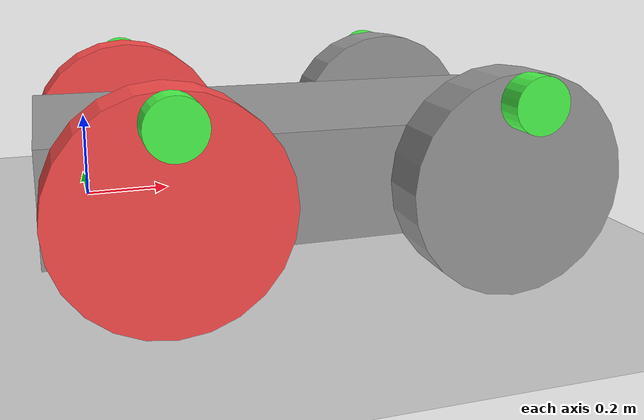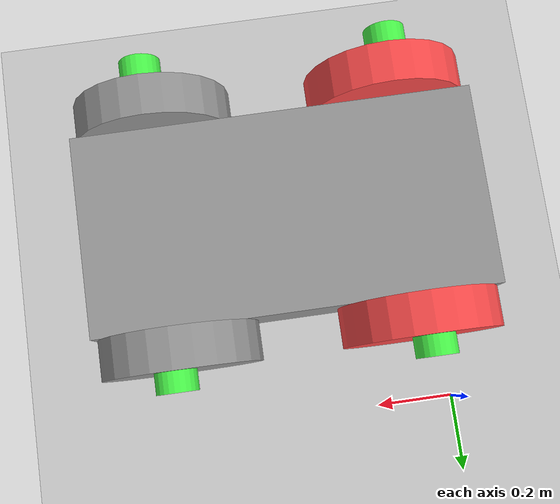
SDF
<sdf version="1.7">
 <world name="default">
  <light name="sun" type="directional">
   <pose>0 0 10 0 -0 0</pose>
   <diffuse>0.8 0.8 0.8 1</diffuse>
   <specular>0.2 0.2 0.2 1</specular>
   <attenuation>
    <range>1000</range>
    <constant>0.9</constant>
    <linear>0.01</linear>
    <quadratic>0.001</quadratic>
   </attenuation>
   <direction>-0.5 0.1 -0.9</direction>
   <spot><inner_angle>0</inner_angle><outer_angle>0</outer_angle><falloff>0</falloff></spot>
  </light>
  <model name="ground_plane">
   <static>1</static>
   <link name="link">
    <collision name="collision">
     <geometry><plane><normal>0 0 1</normal><size>100 100</size></plane></geometry>
     <surface>
      <contact><collide_bitmask>65535</collide_bitmask></contact>
      <friction><ode><mu>100</mu><mu2>50</mu2></ode></friction>
     </surface>
    </collision>
    <visual name="visual">
     <cast_shadows>0</cast_shadows>
     <geometry><plane><normal>0 0 1</normal><size>100 100</size></plane></geometry>
     <material>
      <script><uri>file://media/materials/scripts/gazebo.material</uri><name>Gazebo/Grey</name></script>
     </material>
    </visual>
   </link>
  </model>
  <gravity>0 0 -9.8</gravity>
  <magnetic_field>6e-06 2.3e-05 -4.2e-05</magnetic_field>
  <atmosphere type="adiabatic"/>
  <physics type="ode">
   <max_step_size>0.001</max_step_size>
   <real_time_factor>1</real_time_factor>
   <real_time_update_rate>1000</real_time_update_rate>
  </physics>
  <scene><ambient>0.4 0.4 0.4 1</ambient><background>0.7 0.7 0.7 1</background><shadows>1</shadows></scene>
  <spherical_coordinates>
   <surface_model>EARTH_WGS84</surface_model>
   <latitude_deg>0</latitude_deg>
   <longitude_deg>0</longitude_deg>
   <elevation>0</elevation>
   <heading_deg>0</heading_deg>
  </spherical_coordinates>
  <model name="car">
   <link name="body">
    <inertial>
     <mass>1</mass>
     <inertia>
      <ixx>0.166667</ixx>
      <ixy>0</ixy>
      <ixz>0</ixz>
      <iyy>0.166667</iyy>
      <iyz>0</iyz>
      <izz>0.166667</izz>
     </inertia>
    </inertial>
    <pose>-0.324573 -0.290339 0.5 0 -0 0</pose>
    <visual name="visual">
     <geometry><box><size>1 0.5 0.2</size></box></geometry>
     <material>
      <lighting>1</lighting>
      <script><uri>file://media/materials/scripts/gazebo.material</uri><name>Gazebo/Grey</name></script>
      <shader type="pixel"><normal_map>__default__</normal_map></shader>
      <ambient>0.3 0.3 0.3 1</ambient>
      <diffuse>0.7 0.7 0.7 1</diffuse>
      <specular>0.01 0.01 0.01 1</specular>
      <emissive>0 0 0 1</emissive>
     </material>
    </visual>
    <collision name="collision">
     <geometry><box><size>1 0.5 0.2</size></box></geometry>
     <surface>
      <friction>
       <ode><mu>1</mu><mu2>1</mu2><fdir1>0 0 0</fdir1><slip1>0</slip1><slip2>0</slip2></ode>
       <torsional>
        <coefficient>1</coefficient>
        <patch_radius>0</patch_radius>
        <surface_radius>0</surface_radius>
        <use_patch_radius>1</use_patch_radius>
        <ode><slip>0</slip></ode>
       </torsional>
      </friction>
      <bounce><restitution_coefficient>0</restitution_coefficient><threshold>1e+06</threshold></bounce>
      <contact>
       <collide_without_contact>0</collide_without_contact>
       <collide_without_contact_bitmask>1</collide_without_contact_bitmask>
       <collide_bitmask>1</collide_bitmask>
       <ode>
        <soft_cfm>0</soft_cfm>
        <soft_erp>0.2</soft_erp>
        <kp>1e+13</kp>
        <kd>1</kd>
        <max_vel>0.01</max_vel>
        <min_depth>0</min_depth>
       </ode>
       <bullet>
        <split_impulse>1</split_impulse>
        <split_impulse_penetration_threshold>-0.01</split_impulse_penetration_threshold>
        <soft_cfm>0</soft_cfm>
        <soft_erp>0.2</soft_erp>
        <kp>1e+13</kp>
        <kd>1</kd>
       </bullet>
      </contact>
     </surface>
    </collision>
   </link>
   <link name="back_left_wheel">
    <inertial>
     <mass>1</mass>
     <inertia><ixx>0.145833</ixx><ixy>0</ixy><ixz>0</ixz><iyy>0.145833</iyy><iyz>0</iyz><izz>0.125</izz></inertia>
    </inertial>
    <pose>-0.024573 -0.59034 0.5 1.5708 -0 0</pose>
    <visual name="visual">
     <geometry><cylinder><radius>0.2</radius><length>0.1</length></cylinder></geometry>
     <material>
      <lighting>1</lighting>
      <script><uri>file://media/materials/scripts/gazebo.material</uri><name>Gazebo/Grey</name></script>
      <shader type="pixel"><normal_map>__default__</normal_map></shader>
      <ambient>0.3 0.3 0.3 1</ambient>
      <diffuse>0.7 0.7 0.7 1</diffuse>
      <specular>0.01 0.01 0.01 1</specular>
      <emissive>0 0 0 1</emissive>
     </material>
    </visual>
    <collision name="collision">
     <geometry><cylinder><radius>0.2</radius><length>0.1</length></cylinder></geometry>
     <surface>
      <friction>
       <ode><mu>1</mu><mu2>1</mu2><fdir1>0 0 0</fdir1><slip1>0.5</slip1><slip2>0</slip2></ode>
       <torsional>
        <coefficient>1</coefficient>
        <patch_radius>0</patch_radius>
        <surface_radius>0</surface_radius>
        <use_patch_radius>1</use_patch_radius>
        <ode><slip>0</slip></ode>
       </torsional>
      </friction>
      <bounce><restitution_coefficient>0</restitution_coefficient><threshold>1e+06</threshold></bounce>
      <contact>
       <collide_without_contact>0</collide_without_contact>
       <collide_without_contact_bitmask>1</collide_without_contact_bitmask>
       <collide_bitmask>1</collide_bitmask>
       <ode>
        <soft_cfm>0</soft_cfm>
        <soft_erp>0.2</soft_erp>
        <kp>1e+13</kp>
        <kd>1</kd>
        <max_vel>0.01</max_vel>
        <min_depth>0.005</min_depth>
       </ode>
       <bullet>
        <split_impulse>1</split_impulse>
        <split_impulse_penetration_threshold>-0.01</split_impulse_penetration_threshold>
        <soft_cfm>0</soft_cfm>
        <soft_erp>0.2</soft_erp>
        <kp>1e+13</kp>
        <kd>1</kd>
       </bullet>
      </contact>
     </surface>
    </collision>
   </link>
   <link name="back_right_wheel">
    <inertial>
     <mass>1</mass>
     <inertia><ixx>0.145833</ixx><ixy>0</ixy><ixz>0</ixz><iyy>0.145833</iyy><iyz>0</iyz><izz>0.125</izz></inertia>
    </inertial>
    <pose>-0.024573 0.009661 0.5 1.5708 -0 0</pose>
    <visual name="visual">
     <geometry><cylinder><radius>0.2</radius><length>0.1</length></cylinder></geometry>
     <material>
      <lighting>1</lighting>
      <script><uri>file://media/materials/scripts/gazebo.material</uri><name>Gazebo/Grey</name></script>
      <shader type="pixel"><normal_map>__default__</normal_map></shader>
      <ambient>0.3 0.3 0.3 1</ambient>
      <diffuse>0.7 0.7 0.7 1</diffuse>
      <specular>0.01 0.01 0.01 1</specular>
      <emissive>0 0 0 1</emissive>
     </material>
    </visual>
    <collision name="collision">
     <geometry><cylinder><radius>0.2</radius><length>0.1</length></cylinder></geometry>
     <surface>
      <friction>
       <ode><mu>1</mu><mu2>1</mu2><fdir1>0 0 0</fdir1><slip1>0.5</slip1><slip2>0</slip2></ode>
       <torsional>
        <coefficient>1</coefficient>
        <patch_radius>0</patch_radius>
        <surface_radius>0</surface_radius>
        <use_patch_radius>1</use_patch_radius>
        <ode><slip>0</slip></ode>
       </torsional>
      </friction>
      <bounce><restitution_coefficient>0</restitution_coefficient><threshold>1e+06</threshold></bounce>
      <contact>
       <collide_without_contact>0</collide_without_contact>
       <collide_without_contact_bitmask>1</collide_without_contact_bitmask>
       <collide_bitmask>1</collide_bitmask>
       <ode>
        <soft_cfm>0</soft_cfm>
        <soft_erp>0.2</soft_erp>
        <kp>1e+13</kp>
        <kd>1</kd>
        <max_vel>0.01</max_vel>
        <min_depth>0.005</min_depth>
       </ode>
       <bullet>
        <split_impulse>1</split_impulse>
        <split_impulse_penetration_threshold>-0.01</split_impulse_penetration_threshold>
        <soft_cfm>0</soft_cfm>
        <soft_erp>0.2</soft_erp>
        <kp>1e+13</kp>
        <kd>1</kd>
       </bullet>
      </contact>
     </surface>
    </collision>
   </link>
   <link name="front_left_wheel">
    <inertial>
     <mass>1</mass>
     <inertia><ixx>0.145833</ixx><ixy>0</ixy><ixz>0</ixz><iyy>0.145833</iyy><iyz>0</iyz><izz>0.125</izz></inertia>
    </inertial>
    <pose>-0.624573 -0.59034 0.5 1.5708 -0 0</pose>
    <visual name="visual">
     <geometry><cylinder><radius>0.2</radius><length>0.1</length></cylinder></geometry>
     <material>
      <lighting>1</lighting>
      <script><uri>file://media/materials/scripts/gazebo.material</uri><name>Gazebo/Grey</name></script>
      <shader type="pixel"><normal_map>__default__</normal_map></shader>
      <ambient>1 0.3 0.3 1</ambient>
      <diffuse>0.7 0.7 0.7 1</diffuse>
      <specular>0.01 0.01 0.01 1</specular>
      <emissive>0 0 0 1</emissive>
     </material>
    </visual>
    <collision name="collision">
     <geometry><cylinder><radius>0.2</radius><length>0.1</length></cylinder></geometry>
     <surface>
      <friction>
       <ode><mu>1</mu><mu2>1</mu2><fdir1>0 0 0</fdir1><slip1>0.5</slip1><slip2>0</slip2></ode>
       <torsional>
        <coefficient>1</coefficient>
        <patch_radius>0</patch_radius>
        <surface_radius>0</surface_radius>
        <use_patch_radius>1</use_patch_radius>
        <ode><slip>0</slip></ode>
       </torsional>
      </friction>
      <bounce><restitution_coefficient>0</restitution_coefficient><threshold>1e+06</threshold></bounce>
      <contact>
       <collide_without_contact>0</collide_without_contact>
       <collide_without_contact_bitmask>1</collide_without_contact_bitmask>
       <collide_bitmask>1</collide_bitmask>
       <ode>
        <soft_cfm>0</soft_cfm>
        <soft_erp>0.2</soft_erp>
        <kp>1e+13</kp>
        <kd>1</kd>
        <max_vel>0.01</max_vel>
        <min_depth>0.005</min_depth>
       </ode>
       <bullet>
        <split_impulse>1</split_impulse>
        <split_impulse_penetration_threshold>-0.01</split_impulse_penetration_threshold>
        <soft_cfm>0</soft_cfm>
        <soft_erp>0.2</soft_erp>
        <kp>1e+13</kp>
        <kd>1</kd>
       </bullet>
      </contact>
     </surface>
    </collision>
   </link>
   <link name="front_right_wheel">
    <inertial>
     <mass>1</mass>
     <inertia><ixx>0.145833</ixx><ixy>0</ixy><ixz>0</ixz><iyy>0.145833</iyy><iyz>0</iyz><izz>0.125</izz></inertia>
    </inertial>
    <pose>-0.624573 0.009662 0.5 1.5708 -0 0</pose>
    <visual name="visual">
     <geometry><cylinder><radius>0.2</radius><length>0.1</length></cylinder></geometry>
     <material>
      <lighting>1</lighting>
      <script><uri>file://media/materials/scripts/gazebo.material</uri><name>Gazebo/Grey</name></script>
      <shader type="pixel"><normal_map>__default__</normal_map></shader>
      <ambient>1 0.3 0.3 1</ambient>
      <diffuse>0.7 0.7 0.7 1</diffuse>
      <specular>0.01 0.01 0.01 1</specular>
      <emissive>0 0 0 1</emissive>
     </material>
    </visual>
    <collision name="collision">
     <geometry><cylinder><radius>0.2</radius><length>0.1</length></cylinder></geometry>
     <surface>
      <friction>
       <ode><mu>1</mu><mu2>1</mu2><fdir1>0 0 0</fdir1><slip1>0.5</slip1><slip2>0</slip2></ode>
       <torsional>
        <coefficient>1</coefficient>
        <patch_radius>0</patch_radius>
        <surface_radius>0</surface_radius>
        <use_patch_radius>1</use_patch_radius>
        <ode><slip>0</slip></ode>
       </torsional>
      </friction>
      <bounce><restitution_coefficient>0</restitution_coefficient><threshold>1e+06</threshold></bounce>
      <contact>
       <collide_without_contact>0</collide_without_contact>
       <collide_without_contact_bitmask>1</collide_without_contact_bitmask>
       <collide_bitmask>1</collide_bitmask>
       <ode>
        <soft_cfm>0</soft_cfm>
        <soft_erp>0.2</soft_erp>
        <kp>1e+13</kp>
        <kd>1</kd>
        <max_vel>0.01</max_vel>
        <min_depth>0.005</min_depth>
       </ode>
       <bullet>
        <split_impulse>1</split_impulse>
        <split_impulse_penetration_threshold>-0.01</split_impulse_penetration_threshold>
        <soft_cfm>0</soft_cfm>
        <soft_erp>0.2</soft_erp>
        <kp>1e+13</kp>
        <kd>1</kd>
       </bullet>
      </contact>
     </surface>
    </collision>
   </link>
   <link name="link_0_clone">
    <inertial>
     <mass>1e-08</mass>
     <inertia><ixx>0</ixx><ixy>0</ixy><ixz>0</ixz><iyy>0</iyy><iyz>0</iyz><izz>0</izz></inertia>
    </inertial>
    <pose>-0.624573 -0.66534 0.65 4e-06 -0 6e-06</pose>
    <visual name="visual">
     <pose>0 0 0 -1.6555 1.57079 3.05689</pose>
     <geometry><cylinder><radius>0.05</radius><length>0.05</length></cylinder></geometry>
     <material>
      <lighting>1</lighting>
      <script><uri>file://media/materials/scripts/gazebo.material</uri><name>Gazebo/Grey</name></script>
      <shader type="pixel"><normal_map>__default__</normal_map></shader>
      <ambient>0.3 1 0.3 1</ambient>
      <diffuse>0.7 0.7 0.7 1</diffuse>
      <specular>0.01 0.01 0.01 1</specular>
      <emissive>0 0 0 1</emissive>
     </material>
    </visual>
   </link>
   <link name="link_0_clone_0">
    <inertial>
     <mass>1e-08</mass>
     <inertia><ixx>0</ixx><ixy>0</ixy><ixz>0</ixz><iyy>0</iyy><iyz>0</iyz><izz>0</izz></inertia>
    </inertial>
    <pose>-0.024587 -0.665331 0.65 3e-06 -0 6e-06</pose>
    <visual name="visual">
     <pose>0 0 0 -1.6555 1.57079 3.05689</pose>
     <geometry><cylinder><radius>0.05</radius><length>0.05</length></cylinder></geometry>
     <material>
      <lighting>1</lighting>
      <script><uri>file://media/materials/scripts/gazebo.material</uri><name>Gazebo/Grey</name></script>
      <shader type="pixel"><normal_map>__default__</normal_map></shader>
      <ambient>0.3 1 0.3 1</ambient>
      <diffuse>0.7 0.7 0.7 1</diffuse>
      <specular>0.01 0.01 0.01 1</specular>
      <emissive>0 0 0 1</emissive>
     </material>
    </visual>
   </link>
   <link name="link_0_clone_1">
    <inertial>
     <mass>1e-08</mass>
     <inertia><ixx>0</ixx><ixy>0</ixy><ixz>0</ixz><iyy>0</iyy><iyz>0</iyz><izz>0</izz></inertia>
    </inertial>
    <pose>-0.624552 0.08522 0.65 0 -0 0</pose>
    <visual name="visual">
     <pose>0 0 0 -1.6555 1.57079 3.05689</pose>
     <geometry><cylinder><radius>0.05</radius><length>0.05</length></cylinder></geometry>
     <material>
      <lighting>1</lighting>
      <script><uri>file://media/materials/scripts/gazebo.material</uri><name>Gazebo/Grey</name></script>
      <shader type="pixel"><normal_map>__default__</normal_map></shader>
      <ambient>0.3 1 0.3 1</ambient>
      <diffuse>0.7 0.7 0.7 1</diffuse>
      <specular>0.01 0.01 0.01 1</specular>
      <emissive>0 0 0 1</emissive>
     </material>
    </visual>
   </link>
   <link name="link_0_clone_2">
    <inertial>
     <mass>1e-08</mass>
     <inertia><ixx>0</ixx><ixy>0</ixy><ixz>0</ixz><iyy>0</iyy><iyz>0</iyz><izz>0</izz></inertia>
    </inertial>
    <pose>-0.024551 0.085219 0.65 0 -0 0</pose>
    <visual name="visual">
     <pose>0 0 0 -1.6555 1.57079 3.05689</pose>
     <geometry><cylinder><radius>0.05</radius><length>0.05</length></cylinder></geometry>
     <material>
      <lighting>1</lighting>
      <script><uri>file://media/materials/scripts/gazebo.material</uri><name>Gazebo/Grey</name></script>
      <shader type="pixel"><normal_map>__default__</normal_map></shader>
      <ambient>0.3 1 0.3 1</ambient>
      <diffuse>0.7 0.7 0.7 1</diffuse>
      <specular>0.01 0.01 0.01 1</specular>
      <emissive>0 0 0 1</emissive>
     </material>
    </visual>
   </link>
   <joint name="back_left_wheel_JOINT_0" type="fixed">
    <parent>back_left_wheel</parent>
    <child>link_0_clone_0</child>
    <physics>
     <ode><limit><cfm>0</cfm><erp>0.2</erp></limit><suspension><cfm>0</cfm><erp>0.2</erp></suspension></ode>
    </physics>
   </joint>
   <joint name="back_left_wheel_joint" type="revolute">
    <parent>body</parent>
    <child>back_left_wheel</child>
    <axis>
     <xyz>0 0 1</xyz>
     <limit>
      <lower>-1.79769e+308</lower>
      <upper>1.79769e+308</upper>
      <effort>-1</effort>
      <velocity>-1</velocity>
     </limit>
     <dynamics>
      <spring_reference>0</spring_reference>
      <spring_stiffness>0</spring_stiffness>
      <damping>0</damping>
      <friction>0</friction>
     </dynamics>
    </axis>
    <physics>
     <ode><limit><cfm>0</cfm><erp>0.2</erp></limit><suspension><cfm>0</cfm><erp>0.2</erp></suspension></ode>
    </physics>
   </joint>
   <joint name="back_right_wheel_JOINT_2" type="fixed">
    <parent>back_right_wheel</parent>
    <child>link_0_clone_2</child>
    <physics>
     <ode><limit><cfm>0</cfm><erp>0.2</erp></limit><suspension><cfm>0</cfm><erp>0.2</erp></suspension></ode>
    </physics>
   </joint>
   <joint name="back_right_wheel_joint" type="revolute">
    <parent>body</parent>
    <child>back_right_wheel</child>
    <axis>
     <xyz>0 0 1</xyz>
     <limit>
      <lower>-1.79769e+308</lower>
      <upper>1.79769e+308</upper>
      <effort>-1</effort>
      <velocity>-1</velocity>
     </limit>
     <dynamics>
      <spring_reference>0</spring_reference>
      <spring_stiffness>0</spring_stiffness>
      <damping>0</damping>
      <friction>0</friction>
     </dynamics>
    </axis>
    <physics>
     <ode><limit><cfm>0</cfm><erp>0.2</erp></limit><suspension><cfm>0</cfm><erp>0.2</erp></suspension></ode>
    </physics>
   </joint>
   <joint name="front_left_wheel_joint" type="revolute">
    <parent>body</parent>
    <child>front_left_wheel</child>
    <axis>
     <xyz>0 0 1</xyz>
     <limit>
      <lower>-1.79769e+308</lower>
      <upper>1.79769e+308</upper>
      <effort>-1</effort>
      <velocity>-1</velocity>
     </limit>
     <dynamics>
      <spring_reference>0</spring_reference>
      <spring_stiffness>0</spring_stiffness>
      <damping>0</damping>
      <friction>0</friction>
     </dynamics>
    </axis>
    <physics>
     <ode><limit><cfm>0</cfm><erp>0.2</erp></limit><suspension><cfm>0</cfm><erp>0.2</erp></suspension></ode>
    </physics>
   </joint>
   <joint name="front_right_wheel_JOINT_1" type="fixed">
    <parent>front_right_wheel</parent>
    <child>link_0_clone_1</child>
    <physics>
     <ode><limit><cfm>0</cfm><erp>0.2</erp></limit><suspension><cfm>0</cfm><erp>0.2</erp></suspension></ode>
    </physics>
   </joint>
   <joint name="front_right_wheel_joint" type="revolute">
    <parent>body</parent>
    <child>front_right_wheel</child>
    <axis>
     <xyz>0 0 1</xyz>
     <limit>
      <lower>-1.79769e+308</lower>
      <upper>1.79769e+308</upper>
      <effort>-1</effort>
      <velocity>-1</velocity>
     </limit>
     <dynamics>
      <spring_reference>0</spring_reference>
      <spring_stiffness>0</spring_stiffness>
      <damping>0</damping>
      <friction>0</friction>
     </dynamics>
    </axis>
    <physics>
     <ode><limit><cfm>0</cfm><erp>0.2</erp></limit><suspension><cfm>0</cfm><erp>0.2</erp></suspension></ode>
    </physics>
   </joint>
   <joint name="link_0_clone_JOINT_0" type="fixed">
    <parent>front_left_wheel</parent>
    <child>link_0_clone</child>
    <physics>
     <ode><limit><cfm>0</cfm><erp>0.2</erp></limit><suspension><cfm>0</cfm><erp>0.2</erp></suspension></ode>
    </physics>
   </joint>
   <static>0</static>
   <allow_auto_disable>0</allow_auto_disable>
   <plugin name="car_plugin" filename="libcar_plugin.so"/>
   <pose>0.712696 -0.219265 -0.300121 6.6e-05 -0 0</pose>
  </model>
 </world>
</sdf>
